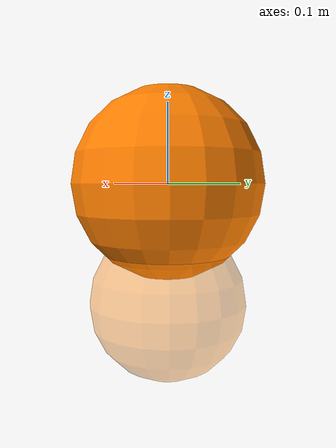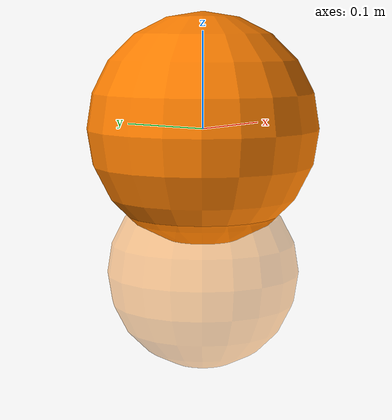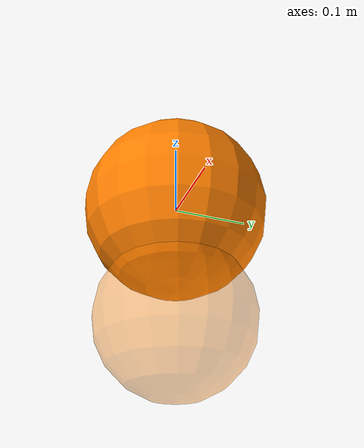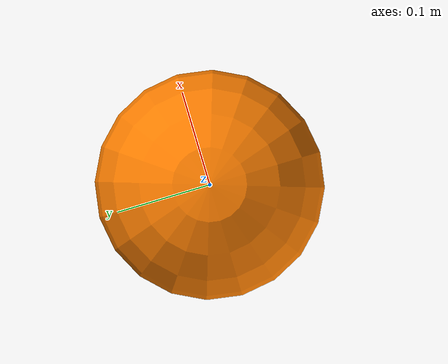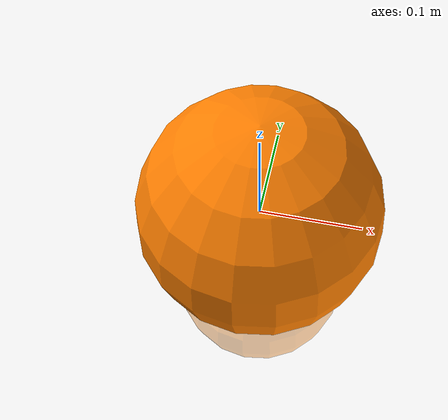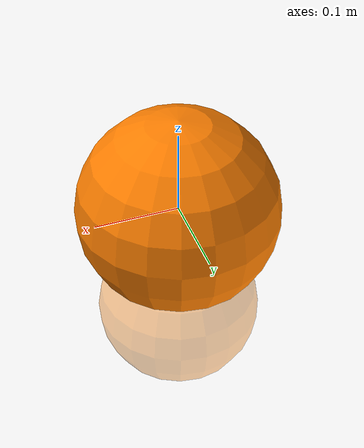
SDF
<?xml version="1.0"?>

<sdf version="1.10">

  <model name="power_flow_particle">

    <static>false</static>

    <link name="link">

      <!-- GLOWING POWER FLOW SPHERE -->
      <visual name="visual">
        <geometry>
          <sphere>
            <radius>0.12</radius>
          </sphere>
        </geometry>

        <material>
          <ambient>1 0.6 0 1</ambient>
          <diffuse>1 0.5 0 1</diffuse>
          <specular>1 0.8 0.2 1</specular>
          <emissive>1 0.4 0 1</emissive>
        </material>
      </visual>

      <!-- Trail effect (shadow sphere) -->
      <visual name="trail">
        <pose>0 0 -0.15 0 0 0</pose>
        <geometry>
          <sphere>
            <radius>0.1</radius>
          </sphere>
        </geometry>
        <material>
          <ambient>1 0.6 0 0.4</ambient>
          <diffuse>1 0.5 0 0.4</diffuse>
          <emissive>1 0.3 0 0.2</emissive>
        </material>
      </visual>

      <!-- COLLISION -->
      <collision name="collision">
        <geometry>
          <sphere>
            <radius>0.12</radius>
          </sphere>
        </geometry>
      </collision>

    </link>

  </model>

</sdf>
